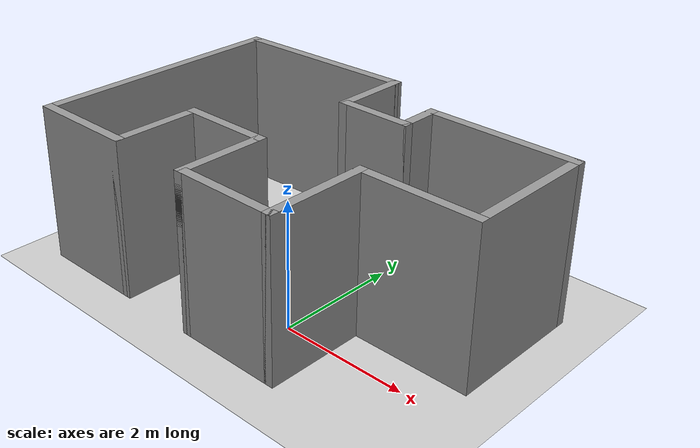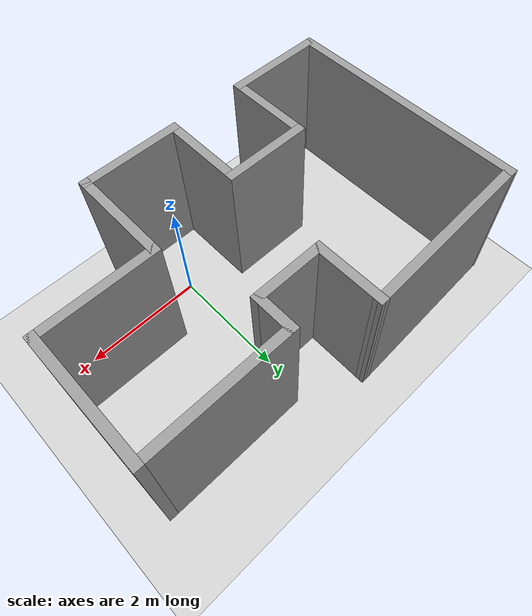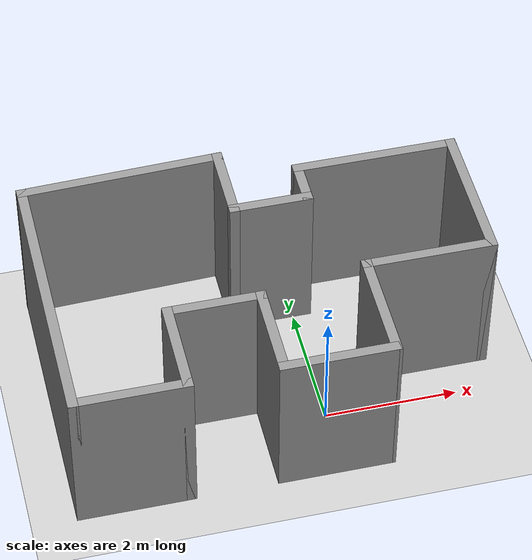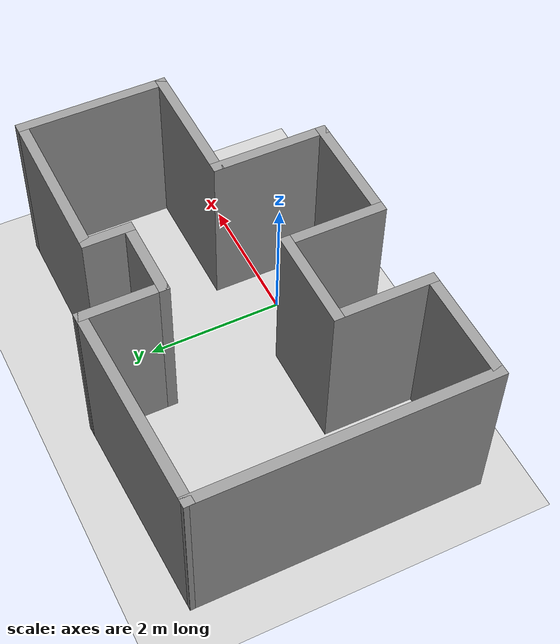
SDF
<sdf version="1.6">
 <world name="default">
  <light name="sun" type="directional">
   <pose>0 0 10 0 -0 0</pose>
   <diffuse>0.8 0.8 0.8 1</diffuse>
   <specular>0.2 0.2 0.2 1</specular>
   <attenuation>
    <range>1000</range>
    <constant>0.9</constant>
    <linear>0.01</linear>
    <quadratic>0.001</quadratic>
   </attenuation>
   <direction>-0.5 0.1 -0.9</direction>
  </light>
  <model name="ground_plane">
   <static>1</static>
   <link name="link">
    <collision name="collision">
     <geometry><plane><normal>0 0 1</normal><size>100 100</size></plane></geometry>
     <surface>
      <contact><collide_bitmask>65535</collide_bitmask></contact>
      <friction><ode><mu>100</mu><mu2>50</mu2></ode></friction>
     </surface>
    </collision>
    <visual name="visual">
     <cast_shadows>0</cast_shadows>
     <geometry><plane><normal>0 0 1</normal><size>100 100</size></plane></geometry>
     <material>
      <script><uri>file://media/materials/scripts/gazebo.material</uri><name>Gazebo/Grey</name></script>
     </material>
    </visual>
   </link>
  </model>
  <gravity>0 0 -9.8</gravity>
  <magnetic_field>6e-06 2.3e-05 -4.2e-05</magnetic_field>
  <atmosphere type="adiabatic"/>
  <physics name="default_physics" default="0" type="ode">
   <max_step_size>0.001</max_step_size>
   <real_time_factor>1</real_time_factor>
   <real_time_update_rate>1000</real_time_update_rate>
  </physics>
  <scene><ambient>0.4 0.4 0.4 1</ambient><background>0.7 0.7 0.7 1</background><shadows>1</shadows></scene>
  <spherical_coordinates>
   <surface_model>EARTH_WGS84</surface_model>
   <latitude_deg>0</latitude_deg>
   <longitude_deg>0</longitude_deg>
   <elevation>0</elevation>
   <heading_deg>0</heading_deg>
  </spherical_coordinates>
  <model name="Untitled_0">
   <pose>-0.64383 1.10054 0 0 -0 0</pose>
   <link name="Wall_10">
    <collision name="Wall_10_Collision">
     <geometry><box><size>2 0.15 2.5</size></box></geometry>
     <pose>0 0 1.25 0 -0 0</pose>
    </collision>
    <visual name="Wall_10_Visual">
     <pose>0 0 1.25 0 -0 0</pose>
     <geometry><box><size>2 0.15 2.5</size></box></geometry>
     <material>
      <script><uri>file://media/materials/scripts/gazebo.material</uri><name>Gazebo/Grey</name></script>
      <ambient>1 1 1 1</ambient>
     </material>
     <meta><layer>0</layer></meta>
    </visual>
    <pose>2.27625 -0.501249 0 0 -0 0</pose>
   </link>
   <link name="Wall_11">
    <collision name="Wall_11_Collision">
     <geometry><box><size>2.25 0.15 2.5</size></box></geometry>
     <pose>0 0 1.25 0 -0 0</pose>
    </collision>
    <visual name="Wall_11_Visual">
     <pose>0 0 1.25 0 -0 0</pose>
     <geometry><box><size>2.25 0.15 2.5</size></box></geometry>
     <material>
      <script><uri>file://media/materials/scripts/gazebo.material</uri><name>Gazebo/Grey</name></script>
      <ambient>1 1 1 1</ambient>
     </material>
     <meta><layer>0</layer></meta>
    </visual>
    <pose>3.20125 0.548751 0 0 -0 1.5708</pose>
   </link>
   <link name="Wall_12">
    <collision name="Wall_12_Collision">
     <geometry><box><size>2.5 0.15 2.5</size></box></geometry>
     <pose>0 0 1.25 0 -0 0</pose>
    </collision>
    <visual name="Wall_12_Visual">
     <pose>0 0 1.25 0 -0 0</pose>
     <geometry><box><size>2.5 0.15 2.5</size></box></geometry>
     <material>
      <script><uri>file://media/materials/scripts/gazebo.material</uri><name>Gazebo/Grey</name></script>
      <ambient>1 1 1 1</ambient>
     </material>
     <meta><layer>0</layer></meta>
    </visual>
    <pose>2.02625 1.59875 0 0 -0 3.14159</pose>
   </link>
   <link name="Wall_13">
    <collision name="Wall_13_Collision">
     <geometry><box><size>0.75 0.15 2.5</size></box></geometry>
     <pose>0 0 1.25 0 -0 0</pose>
    </collision>
    <visual name="Wall_13_Visual">
     <pose>0 0 1.25 0 -0 0</pose>
     <geometry><box><size>0.75 0.15 2.5</size></box></geometry>
     <material>
      <script><uri>file://media/materials/scripts/gazebo.material</uri><name>Gazebo/Grey</name></script>
      <ambient>1 1 1 1</ambient>
     </material>
     <meta><layer>0</layer></meta>
    </visual>
    <pose>0.851249 1.29875 0 0 0 -1.5708</pose>
   </link>
   <link name="Wall_14">
    <collision name="Wall_14_Collision">
     <geometry><box><size>1.25 0.15 2.5</size></box></geometry>
     <pose>0 0 1.25 0 -0 0</pose>
    </collision>
    <visual name="Wall_14_Visual">
     <pose>0 0 1.25 0 -0 0</pose>
     <geometry><box><size>1.25 0.15 2.5</size></box></geometry>
     <material>
      <script><uri>file://media/materials/scripts/gazebo.material</uri><name>Gazebo/Grey</name></script>
      <ambient>1 1 1 1</ambient>
     </material>
     <meta><layer>0</layer></meta>
    </visual>
    <pose>0.301249 0.998751 0 0 -0 3.14159</pose>
   </link>
   <link name="Wall_15">
    <collision name="Wall_15_Collision">
     <geometry><box><size>1.25 0.15 2.5</size></box></geometry>
     <pose>0 0 1.25 0 -0 0</pose>
    </collision>
    <visual name="Wall_15_Visual">
     <pose>0 0 1.25 0 -0 0</pose>
     <geometry><box><size>1.25 0.15 2.5</size></box></geometry>
     <material>
      <script><uri>file://media/materials/scripts/gazebo.material</uri><name>Gazebo/Grey</name></script>
      <ambient>1 1 1 1</ambient>
     </material>
     <meta><layer>0</layer></meta>
    </visual>
    <pose>-0.248751 1.54875 0 0 -0 1.5708</pose>
   </link>
   <link name="Wall_16">
    <collision name="Wall_16_Collision">
     <geometry><box><size>3.10169 0.15 2.5</size></box></geometry>
     <pose>0 0 1.25 0 -0 0</pose>
    </collision>
    <visual name="Wall_16_Visual">
     <pose>0 0 1.25 0 -0 0</pose>
     <geometry><box><size>3.10169 0.15 2.5</size></box></geometry>
     <material>
      <script><uri>file://media/materials/scripts/gazebo.material</uri><name>Gazebo/Grey</name></script>
      <ambient>1 1 1 1</ambient>
     </material>
     <meta><layer>0</layer></meta>
    </visual>
    <pose>-1.72375 2.04875 0 0 0 -3.10771</pose>
   </link>
   <link name="Wall_3">
    <collision name="Wall_3_Collision">
     <geometry><box><size>4.25 0.15 2.5</size></box></geometry>
     <pose>0 0 1.25 0 -0 0</pose>
    </collision>
    <visual name="Wall_3_Visual">
     <pose>0 0 1.25 0 -0 0</pose>
     <geometry><box><size>4.25 0.15 2.5</size></box></geometry>
     <material>
      <script><uri>file://media/materials/scripts/gazebo.material</uri><name>Gazebo/Grey</name></script>
      <ambient>1 1 1 1</ambient>
     </material>
     <meta><layer>0</layer></meta>
    </visual>
    <pose>-3.19875 -0.051249 0 0 0 -1.5708</pose>
   </link>
   <link name="Wall_4">
    <collision name="Wall_4_Collision">
     <geometry><box><size>1.75 0.15 2.5</size></box></geometry>
     <pose>0 0 1.25 0 -0 0</pose>
    </collision>
    <visual name="Wall_4_Visual">
     <pose>0 0 1.25 0 -0 0</pose>
     <geometry><box><size>1.75 0.15 2.5</size></box></geometry>
     <material>
      <script><uri>file://media/materials/scripts/gazebo.material</uri><name>Gazebo/Grey</name></script>
      <ambient>1 1 1 1</ambient>
     </material>
     <meta><layer>0</layer></meta>
    </visual>
    <pose>-2.39875 -2.10125 0 0 -0 0</pose>
   </link>
   <link name="Wall_5">
    <collision name="Wall_5_Collision">
     <geometry><box><size>1.5 0.15 2.5</size></box></geometry>
     <pose>0 0 1.25 0 -0 0</pose>
    </collision>
    <visual name="Wall_5_Visual">
     <pose>0 0 1.25 0 -0 0</pose>
     <geometry><box><size>1.5 0.15 2.5</size></box></geometry>
     <material>
      <script><uri>file://media/materials/scripts/gazebo.material</uri><name>Gazebo/Grey</name></script>
      <ambient>1 1 1 1</ambient>
     </material>
     <meta><layer>0</layer></meta>
    </visual>
    <pose>-1.59875 -1.42625 0 0 -0 1.5708</pose>
   </link>
   <link name="Wall_6">
    <collision name="Wall_6_Collision">
     <geometry><box><size>1.5 0.15 2.5</size></box></geometry>
     <pose>0 0 1.25 0 -0 0</pose>
    </collision>
    <visual name="Wall_6_Visual">
     <pose>0 0 1.25 0 -0 0</pose>
     <geometry><box><size>1.5 0.15 2.5</size></box></geometry>
     <material>
      <script><uri>file://media/materials/scripts/gazebo.material</uri><name>Gazebo/Grey</name></script>
      <ambient>1 1 1 1</ambient>
     </material>
     <meta><layer>0</layer></meta>
    </visual>
    <pose>-0.923751 -0.751249 0 0 -0 0</pose>
   </link>
   <link name="Wall_7">
    <collision name="Wall_7_Collision">
     <geometry><box><size>1.5 0.15 2.5</size></box></geometry>
     <pose>0 0 1.25 0 -0 0</pose>
    </collision>
    <visual name="Wall_7_Visual">
     <pose>0 0 1.25 0 -0 0</pose>
     <geometry><box><size>1.5 0.15 2.5</size></box></geometry>
     <material>
      <script><uri>file://media/materials/scripts/gazebo.material</uri><name>Gazebo/Grey</name></script>
      <ambient>1 1 1 1</ambient>
     </material>
     <meta><layer>0</layer></meta>
    </visual>
    <pose>-0.248751 -1.42625 0 0 0 -1.5708</pose>
   </link>
   <link name="Wall_8">
    <collision name="Wall_8_Collision">
     <geometry><box><size>1.75 0.15 2.5</size></box></geometry>
     <pose>0 0 1.25 0 -0 0</pose>
    </collision>
    <visual name="Wall_8_Visual">
     <pose>0 0 1.25 0 -0 0</pose>
     <geometry><box><size>1.75 0.15 2.5</size></box></geometry>
     <material>
      <script><uri>file://media/materials/scripts/gazebo.material</uri><name>Gazebo/Grey</name></script>
      <ambient>1 1 1 1</ambient>
     </material>
     <meta><layer>0</layer></meta>
    </visual>
    <pose>0.551249 -2.10125 0 0 -0 0</pose>
   </link>
   <link name="Wall_9">
    <collision name="Wall_9_Collision">
     <geometry><box><size>1.75 0.15 2.5</size></box></geometry>
     <pose>0 0 1.25 0 -0 0</pose>
    </collision>
    <visual name="Wall_9_Visual">
     <pose>0 0 1.25 0 -0 0</pose>
     <geometry><box><size>1.75 0.15 2.5</size></box></geometry>
     <material>
      <script><uri>file://media/materials/scripts/gazebo.material</uri><name>Gazebo/Grey</name></script>
      <ambient>1 1 1 1</ambient>
     </material>
     <meta><layer>0</layer></meta>
    </visual>
    <pose>1.35125 -1.30125 0 0 -0 1.5708</pose>
   </link>
   <static>1</static>
  </model>
 </world>
</sdf>
